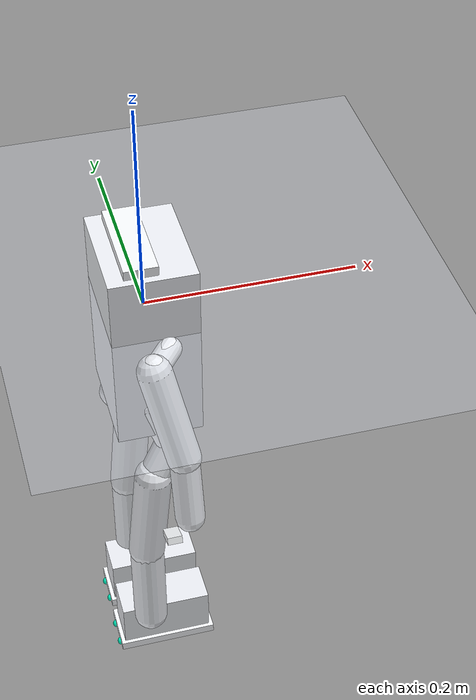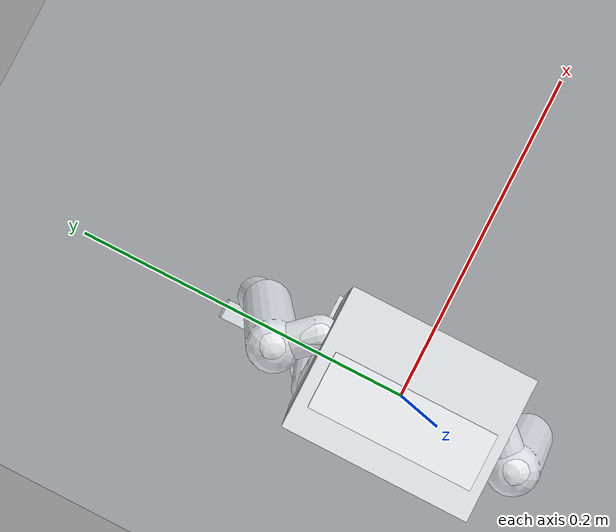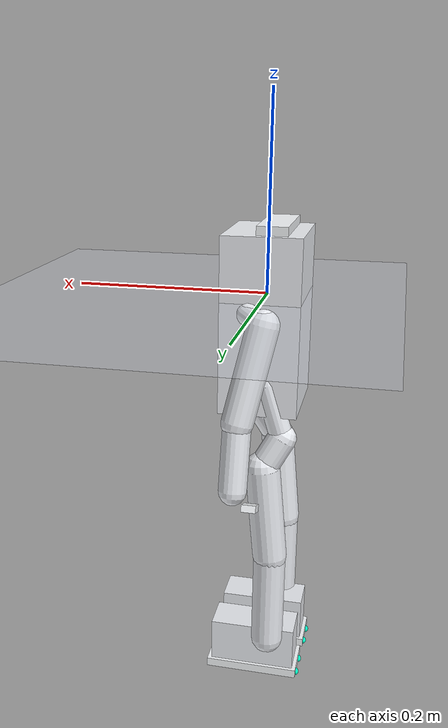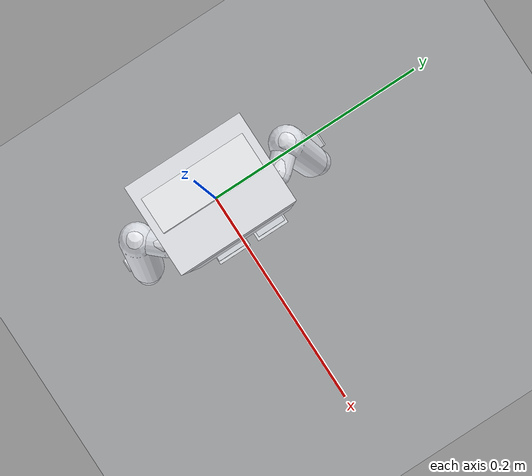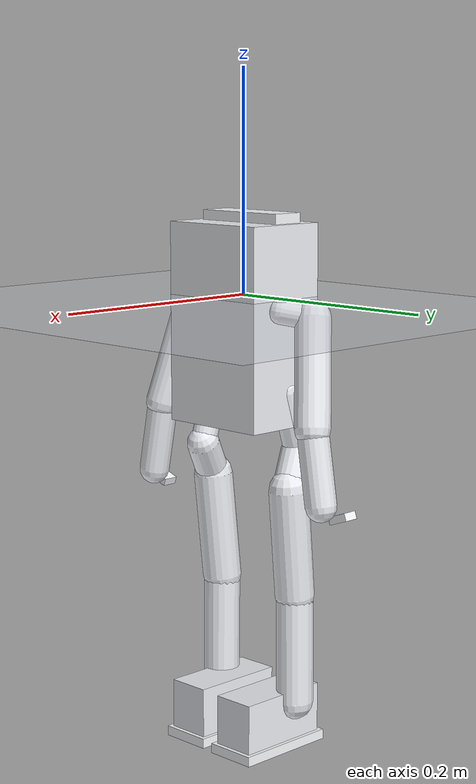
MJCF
<?xml version='1.0' encoding='utf-8'?>
<mujoco model="zeroth01_physical_mount_v5_original_16dof_solidworks_motion_mjx">
  <compiler angle="radian" coordinate="local" autolimits="true" />
  <option timestep="0.002" gravity="0 0 -9.81" integrator="implicitfast" />
  <size njmax="2000" nconmax="400" />
  <default>
    <joint damping="0.035" armature="0.002" frictionloss="0.01" />
    <geom margin="0.001" condim="3" friction="1.0 0.02 0.001" />
  </default>
  <visual>
    <headlight diffuse="0.75 0.75 0.75" ambient="0.35 0.35 0.35" />
    <rgba haze="0.15 0.18 0.22 1" />
  </visual>
  <worldbody>
    <light pos="0 -1 1.2" dir="0 0 -1" directional="true" />
    <geom name="ground" type="plane" size="2 2 0.02" rgba="0.82 0.84 0.88 1" friction="1.2 0.02 0.001" />
    <body name="Z_BOT2_MASTER_BODY_SKELETON" pos="0 0 0" quat="0.707388269167 0 0 0.706825181105">
      <freejoint name="floating_base" />
      <inertial pos="0 0 -0.025" mass="1.041" fullinertia="0.00336706082061 0.00376827906175 0.00151393988236 0 0 0" />
      <geom name="torso_collision" type="box" size="0.0525318364224 0.0400417944696 0.09" pos="0 0 -0.025" rgba="0.93 0.94 0.96 1" friction="1.0 0.02 0.001" />
      <site name="imu_site" pos="0 0 0.02" size="0.006" rgba="0.2 1 0.2 1" />
      <body name="Z_BOT2_MASTER_SHOULDER2" pos="0.055995 -0.01061 -0.009528" quat="1.22474523098e-07 1.22474483074e-07 0.707106665647 0.707106896726">
        <joint name="left_shoulder_yaw" type="hinge" axis="0 0 1" range="-0.12 0.12" limited="true" />
        <inertial pos="-0.0104225 -0.00245 0.0094" mass="0.02" fullinertia="3.98041666667e-06 5.83389004167e-06 4.26550670833e-06 0 0 0" />
        <geom type="capsule" fromto="0 0 0 -0.020845 -0.0049 0.0188" size="0.011" name="Z_BOT2_MASTER_SHOULDER2_collision" rgba="0.92 0.93 0.95 1" />
        <body name="3215_1Flange" pos="-0.020845 -0.0049 0.0188" quat="0.500000163397 -0.5 0.499999836603 -0.5">
          <joint name="left_shoulder_pitch" type="hinge" axis="0 0 1" range="-0.47123889 0.47123889" limited="true" />
          <inertial pos="0.046492 0.0099 -0.0093" mass="0.149" fullinertia="6.51080333333e-05 0.000225751889845 0.000227277649845 0 0 0" />
          <geom type="capsule" fromto="0 0 0 0.092984 0.0198 -0.0186" size="0.016" name="3215_1Flange_collision" rgba="0.92 0.93 0.95 1" />
          <body name="R_ARM_MIRROR_1" pos="0.092984 0.0198 -0.0186" quat="-1.22474523098e-07 -1.22474483074e-07 0.707106665647 0.707106896726">
            <joint name="left_elbow_yaw" type="hinge" axis="0 0 -1" range="-0.34 0.24" limited="true" />
            <inertial pos="-0.033103 -0.005889 0.00063" mass="0.03" fullinertia="6.09609221e-06 2.432729509e-05 2.61426493e-05 0 0 0" />
            <geom type="capsule" fromto="0 0 0 -0.066206 -0.011778 0.00126" size="0.014" name="R_ARM_MIRROR_1_collision" rgba="0.92 0.93 0.95 1" />
            <body name="FINGER_1" pos="-0.066206 -0.011778 0.00126" quat="-9.93463784844e-08 0.573576508925 0.819151993472 -1.41881305656e-07">
              <inertial pos="-0.0034808 -0.0140639302764 0.0187993" mass="0.0060616019575" fullinertia="1.0975397997e-07 2.6720471731e-07 2.00313216652e-07 1.10419025607e-22 5.52095128036e-23 -1.32502830729e-21" />
              <geom type="box" size="0.010 0.0035 0.007" name="FINGER_1_collision" rgba="0.97 0.98 0.99 1" pos="-0.0034808 -0.014 0.0187993" />
            </body>
          </body>
        </body>
      </body>
      <body name="Z_BOT2_MASTER_SHOULDER2_2" pos="-0.055995 -0.01061 -0.009528" quat="0.707106896726 -0.707106665647 0 0">
        <joint name="right_shoulder_yaw" type="hinge" axis="0 0 1" range="-0.12 0.12" limited="true" />
        <inertial pos="-0.0104225 0.00245 0.0094" mass="0.02" fullinertia="3.98041666667e-06 5.83389004167e-06 4.26550670833e-06 0 0 0" />
        <geom type="capsule" fromto="0 0 0 -0.020845 0.0049 0.0188" size="0.011" name="Z_BOT2_MASTER_SHOULDER2_2_collision" rgba="0.92 0.93 0.95 1" />
        <body name="3215_1Flange_2" pos="-0.020845 0.0049 0.0188" quat="0.500000163397 0.5 0.499999836603 0.5">
          <joint name="right_shoulder_pitch" type="hinge" axis="0 0 1" range="-0.47123889 0.47123889" limited="true" />
          <inertial pos="0.046492 -0.0099 -0.0093" mass="0.149" fullinertia="6.51080333333e-05 0.000225751889845 0.000227277649845 0 0 0" />
          <geom type="capsule" fromto="0 0 0 0.092984 -0.0198 -0.0186" size="0.016" name="3215_1Flange_2_collision" rgba="0.92 0.93 0.95 1" />
          <body name="L_ARM_MIRROR_1" pos="0.092984 -0.0198 -0.0186" quat="0.500000163397 -0.5 -0.5 -0.499999836603">
            <joint name="right_elbow_yaw" type="hinge" axis="0 0 1" range="-0.24 0.34" limited="true" />
            <inertial pos="-0.005889 0.033103 -0.00063" mass="0.03" fullinertia="2.432729509e-05 6.09609221e-06 2.61426493e-05 0 0 0" />
            <geom type="capsule" fromto="0 0 0 -0.011778 0.066206 -0.00126" size="0.014" name="L_ARM_MIRROR_1_collision" rgba="0.92 0.93 0.95 1" />
            <body name="FINGER_1_2" pos="-0.011778 0.066206 -0.00126" quat="0.984807740023 3.29132692615e-21 -8.69526751844e-21 0.173648251331">
              <inertial pos="-0.0034808 0.0140639302764 0.0187993" mass="0.0060616019575" fullinertia="1.0975397997e-07 2.6720471731e-07 2.00313216652e-07 -1.65628538411e-22 1.10419025607e-22 4.41676102429e-22" />
              <geom type="box" size="0.010 0.0035 0.007" name="FINGER_1_2_collision" rgba="0.97 0.98 0.99 1" pos="-0.0034808 0.014 0.0187993" />
            </body>
          </body>
        </body>
      </body>
      <body name="U_HIP_L" pos="0.042808 0.007735 -0.083418" quat="3.00000078125e-14 -1.7320510331e-07 1 -1.7320510331e-07">
        <joint name="left_hip_yaw" type="hinge" axis="0 0 1" range="-0.322013241 0.026179939" limited="true" />
        <inertial pos="3.46944695195e-18 0.00885 0.0282" mass="0.02" fullinertia="1.367175e-05 1.17336e-05 3.85815e-06 0 0 0" />
        <geom type="capsule" fromto="0 0 0 6.93889390391e-18 0.0177 0.0564" size="0.012" name="U_HIP_L_collision" rgba="0.92 0.93 0.95 1" />
        <body name="3215_BothFlange_5" pos="0 0.0177 0.0564" quat="0.707106896726 -0.707106665647 0 0">
          <joint name="left_hip_roll" type="hinge" axis="0 0 -1" range="-0.06 0.22" limited="true" />
          <inertial pos="-0.0032 -0.016 -0.00895" mass="0.0995" fullinertia="5.08976495833e-05 3.00106095833e-05 4.28592933333e-05 0 0 0" />
          <geom type="capsule" fromto="0 0 0 -0.0064 -0.032 -0.0179" size="0.015" name="3215_BothFlange_5_collision" rgba="0.92 0.93 0.95 1" />
          <body name="3215_BothFlange_9" pos="-0.0064 -0.032 -0.0179" quat="0.500000163397 0.5 -0.499999836603 -0.5">
            <joint name="left_hip_pitch" type="hinge" axis="0 0 1" range="-0.027495556 0.412327408" limited="true" />
            <inertial pos="0.05 0.005 -0.00063" mass="0.1745" fullinertia="5.09584730167e-05 0.000289150973017 0.000299732833333 0 0 0" />
            <geom type="capsule" fromto="0 0 0 0.1 0.01 -0.00126" size="0.018" name="3215_BothFlange_9_collision" rgba="0.92 0.93 0.95 1" />
            <body name="3215_BothFlange_13" pos="0.1 0.01 -0.00126" quat="1 0 0 0">
              <joint name="left_knee_pitch" type="hinge" axis="0 0 1" range="-0.83285928 0" limited="true" />
              <inertial pos="0.041 -6.0588449674e-09 0.000399997058844" mass="0.205" fullinertia="4.0436940416e-05 0.000250561926339 0.000249621680743 0 0 0" />
              <geom type="capsule" fromto="0 0 0 0.1 0 0.0008" size="0.017" name="3215_BothFlange_13_collision" rgba="0.92 0.93 0.95 1" />
              <body name="FOOT" pos="0.1 0 0.0008" quat="1.22474523098e-07 0.707106896726 0.707106665647 1.22474483074e-07">
                <joint name="left_ankle_pitch" type="hinge" axis="0 0 1" range="-0.66415928 0" limited="true" />
                <inertial pos="0.000267168356117 0.0354753493366 0.00699842206098" mass="0.111817655517" fullinertia="2.7682691276e-05 0.000121169872719 9.75536033414e-05 5.23811885925e-06 1.2734893707e-05 -3.76219134454e-06" />
                <geom name="FOOT_collision" type="box" size="0.045 0.0228 0.0202" pos="-0.016025 0.012845 0.0187" rgba="0.92 0.93 0.95 1" friction="1.0 0.02 0.001" />
                <geom name="FOOT_v5_white_tapered_sole_collision" type="box" size="0.049 0.0045 0.024" pos="-0.016025 0.04013 0.0187" rgba="0.97 0.98 0.99 1" friction="1.2 0.02 0.001" />
                <site name="left_sole_front_medial" pos="-0.045 0.0446 0.0307" size="0.004" rgba="0 1 0.8 1" />
                <site name="left_sole_front_lateral" pos="-0.045 0.0446 0.0067" size="0.004" rgba="0 1 0.8 1" />
                <site name="left_sole_rear_medial" pos="0.032 0.0446 0.0307" size="0.004" rgba="0 1 0.8 1" />
                <site name="left_sole_rear_lateral" pos="0.032 0.0446 0.0067" size="0.004" rgba="0 1 0.8 1" />
              </body>
            </body>
          </body>
        </body>
      </body>
      <body name="U_HIP_R" pos="-0.042868 0.007735 -0.083418" quat="3.00000078125e-14 -1.7320510331e-07 1 -1.7320510331e-07">
        <joint name="right_hip_yaw" type="hinge" axis="0 0 1" range="-0.026179939 0.322013241" limited="true" />
        <inertial pos="0 -0.00885 0.0282" mass="0.02" fullinertia="1.367175e-05 1.17336e-05 3.85815e-06 0 0 0" />
        <geom type="capsule" fromto="0 0 0 0 -0.0177 0.0564" size="0.012" name="U_HIP_R_collision" rgba="0.92 0.93 0.95 1" />
        <body name="3215_BothFlange_6" pos="0 -0.0177 0.0564" quat="1.22474523098e-07 -1.22474483074e-07 -0.707106665647 0.707106896726">
          <joint name="right_hip_roll" type="hinge" axis="0 0 1" range="-0.22 0.06" limited="true" />
          <inertial pos="-0.0032 -0.016 -0.00945" mass="0.0995" fullinertia="5.17002829167e-05 3.08132429167e-05 4.28592933333e-05 0 0 0" />
          <geom type="capsule" fromto="0 0 0 -0.0064 -0.032 -0.0189" size="0.015" name="3215_BothFlange_6_collision" rgba="0.92 0.93 0.95 1" />
          <body name="3215_BothFlange_10" pos="-0.0064 -0.032 -0.0189" quat="0.500000163397 0.5 -0.499999836603 -0.5">
            <joint name="right_hip_pitch" type="hinge" axis="0 0 1" range="-0.412327408 0.027495556" limited="true" />
            <inertial pos="0.05 -0.005 -0.00063" mass="0.1745" fullinertia="5.09584730167e-05 0.000289150973017 0.000299732833333 0 0 0" />
            <geom type="capsule" fromto="0 0 0 0.1 -0.01 -0.00126" size="0.018" name="3215_BothFlange_10_collision" rgba="0.92 0.93 0.95 1" />
            <body name="3215_BothFlange_14" pos="0.1 -0.01 -0.00126" quat="1 0 0 0">
              <joint name="right_knee_pitch" type="hinge" axis="0 0 1" range="0 0.83285928" limited="true" />
              <inertial pos="0.041 1.76538750632e-10 0.000499997058847" mass="0.205" fullinertia="4.06754100426e-05 0.000250800409632 0.000249621667077 0 0 0" />
              <geom type="capsule" fromto="0 0 0 0.1 0 0.001" size="0.017" name="3215_BothFlange_14_collision" rgba="0.92 0.93 0.95 1" />
              <body name="FOOT_2" pos="0.1 0 0.001" quat="1.22474523098e-07 0.707106896726 -0.707106665647 -1.22474483074e-07">
                <joint name="right_ankle_pitch" type="hinge" axis="0 0 1" range="0 0.66415928" limited="true" />
                <inertial pos="0.000267155019216 -0.035475353425 0.00698844843899" mass="0.111817655517" fullinertia="2.76982728993e-05 0.000121185411168 9.75535504349e-05 -5.23811012192e-06 1.27457383194e-05 3.76539507214e-06" />
                <geom name="FOOT_2_collision" type="box" size="0.045 0.0228 0.0202" pos="-0.016025 -0.012845 0.0187" rgba="0.92 0.93 0.95 1" friction="1.0 0.02 0.001" />
                <geom name="FOOT_2_v5_white_tapered_sole_collision" type="box" size="0.049 0.0045 0.024" pos="-0.016025 -0.04013 0.0187" rgba="0.97 0.98 0.99 1" friction="1.2 0.02 0.001" />
                <site name="right_sole_front_medial" pos="-0.045 -0.0446 0.0307" size="0.004" rgba="0 1 0.8 1" />
                <site name="right_sole_front_lateral" pos="-0.045 -0.0446 0.0067" size="0.004" rgba="0 1 0.8 1" />
                <site name="right_sole_rear_medial" pos="0.032 -0.0446 0.0307" size="0.004" rgba="0 1 0.8 1" />
                <site name="right_sole_rear_lateral" pos="0.032 -0.0446 0.0067" size="0.004" rgba="0 1 0.8 1" />
              </body>
            </body>
          </body>
        </body>
      </body>
      <body name="v4_head_shell">
        <inertial pos="0 0.009189728 0.03883662" mass="0.055" fullinertia="2.71262769951e-05 6.04680248301e-05 4.215091507e-05 0 0 0" />
        <geom name="v4_head_shell_collision" type="box" size="0.045375002 0.0155000005 0.0352046175" pos="0 0.009189728 0.03883662" rgba="0.97 0.98 0.99 1" />
        <body name="m5stack_unitv2">
          <inertial pos="0 0.006 0.045" mass="0.018" fullinertia="1.74684126905e-06 4.32e-06 4.33884126905e-06 0 0 0" />
          <geom name="m5stack_unitv2_visual" type="box" size="0.024 0.0121301365 0.012" pos="0 0.006 0.045" rgba="0 0.72 0.85 1" contype="0" conaffinity="0" />
          <site name="unitv2_camera_site" pos="-0.014 -0.0075102725 0.045" size="0.004" rgba="0 0.8 1 1" />
          <site name="unitv2_microphone_site" pos="0.014 -0.0075102725 0.045" size="0.004" rgba="1 0.2 0.8 1" />
        </body>
      </body>
    </body>
  </worldbody>
  <actuator>
    <motor name="left_shoulder_yaw_ctrl" joint="left_shoulder_yaw" gear="1" ctrllimited="true" ctrlrange="-1.2552512 1.2552512" />
    <motor name="left_shoulder_pitch_ctrl" joint="left_shoulder_pitch" gear="1" ctrllimited="true" ctrlrange="-1.2552512 1.2552512" />
    <motor name="left_elbow_yaw_ctrl" joint="left_elbow_yaw" gear="1" ctrllimited="true" ctrlrange="-1.2552512 1.2552512" />
    <motor name="right_shoulder_yaw_ctrl" joint="right_shoulder_yaw" gear="1" ctrllimited="true" ctrlrange="-1.2552512 1.2552512" />
    <motor name="right_shoulder_pitch_ctrl" joint="right_shoulder_pitch" gear="1" ctrllimited="true" ctrlrange="-1.2552512 1.2552512" />
    <motor name="right_elbow_yaw_ctrl" joint="right_elbow_yaw" gear="1" ctrllimited="true" ctrlrange="-1.2552512 1.2552512" />
    <motor name="left_hip_yaw_ctrl" joint="left_hip_yaw" gear="1" ctrllimited="true" ctrlrange="-1.2552512 1.2552512" />
    <motor name="left_hip_roll_ctrl" joint="left_hip_roll" gear="1" ctrllimited="true" ctrlrange="-1.2552512 1.2552512" />
    <motor name="left_hip_pitch_ctrl" joint="left_hip_pitch" gear="1" ctrllimited="true" ctrlrange="-1.2552512 1.2552512" />
    <motor name="left_knee_pitch_ctrl" joint="left_knee_pitch" gear="1" ctrllimited="true" ctrlrange="-1.2552512 1.2552512" />
    <motor name="left_ankle_pitch_ctrl" joint="left_ankle_pitch" gear="1" ctrllimited="true" ctrlrange="-1.2552512 1.2552512" />
    <motor name="right_hip_yaw_ctrl" joint="right_hip_yaw" gear="1" ctrllimited="true" ctrlrange="-1.2552512 1.2552512" />
    <motor name="right_hip_roll_ctrl" joint="right_hip_roll" gear="1" ctrllimited="true" ctrlrange="-1.2552512 1.2552512" />
    <motor name="right_hip_pitch_ctrl" joint="right_hip_pitch" gear="1" ctrllimited="true" ctrlrange="-1.2552512 1.2552512" />
    <motor name="right_knee_pitch_ctrl" joint="right_knee_pitch" gear="1" ctrllimited="true" ctrlrange="-1.2552512 1.2552512" />
    <motor name="right_ankle_pitch_ctrl" joint="right_ankle_pitch" gear="1" ctrllimited="true" ctrlrange="-1.2552512 1.2552512" />
  </actuator>
  <sensor>
    <gyro name="imu_gyro" site="imu_site" />
    <accelerometer name="imu_accelerometer" site="imu_site" />
    <touch name="left_front_medial_touch" site="left_sole_front_medial" />
    <touch name="left_front_lateral_touch" site="left_sole_front_lateral" />
    <touch name="left_rear_medial_touch" site="left_sole_rear_medial" />
    <touch name="left_rear_lateral_touch" site="left_sole_rear_lateral" />
    <touch name="right_front_medial_touch" site="right_sole_front_medial" />
    <touch name="right_front_lateral_touch" site="right_sole_front_lateral" />
    <touch name="right_rear_medial_touch" site="right_sole_rear_medial" />
    <touch name="right_rear_lateral_touch" site="right_sole_rear_lateral" />
  </sensor>
  <keyframe>
    <key name="official_standing" qpos="0 0 0.416448031751 0.707388269167 0 0 0.706825181105 0 0 0 0 0 0 0 0 0 0 0 0 0 0 0 0" />
    <key name="gait_neutral" qpos="0 0 0.411426464541 0.707388269167 0 0 0.706825181105 0 0 0 0 0 0 0 0 0.18 -0.36 -0.18 0 0 -0.18 0.36 0.18" />
    <key name="symmetric_crouch" qpos="0 0 0.411426464541 0.707388269167 0 0 0.706825181105 0 0 0 0 0 0 0 0 0.18 -0.36 -0.18 0 0 -0.18 0.36 0.18" />
  </keyframe>
</mujoco>
